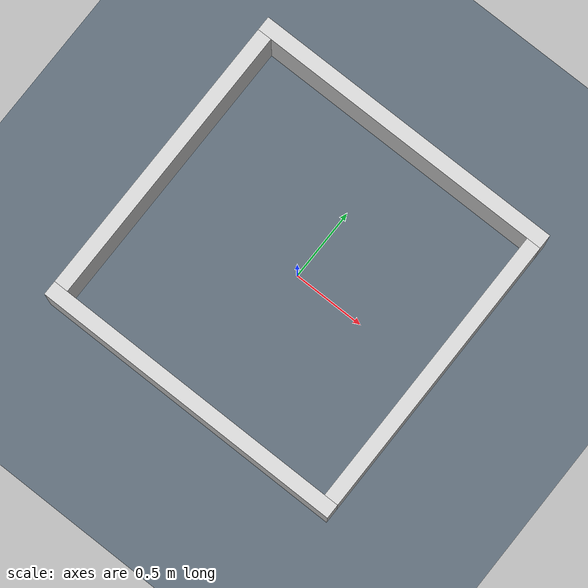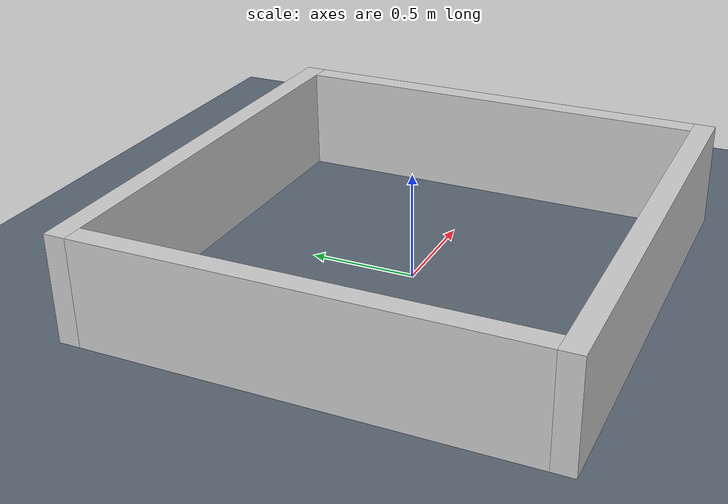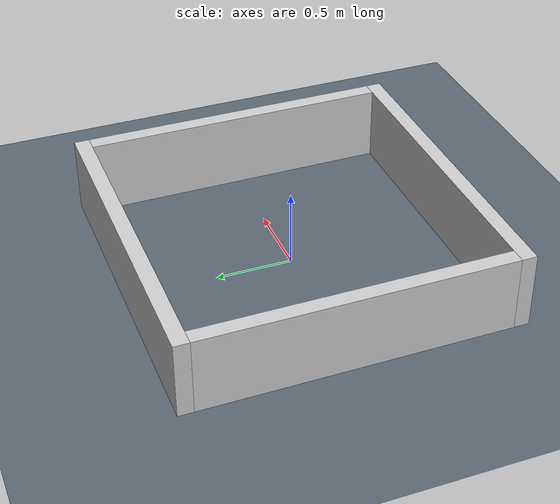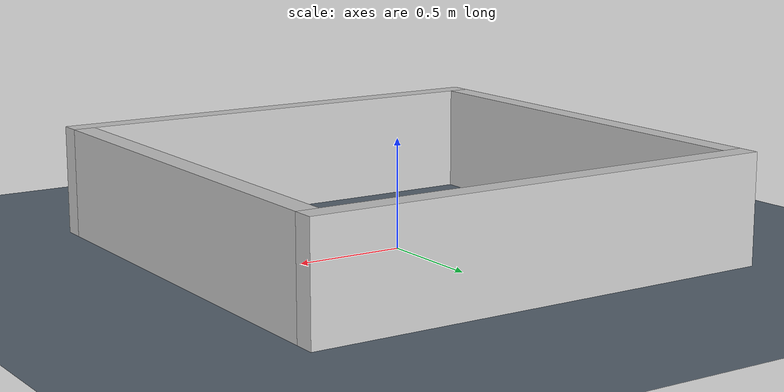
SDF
<?xml version="1.0"?>
<!-- Requested 2x2 m clear interior. Wall thickness 0.10 m; inner faces x/y = +/-1.0 m. -->
<sdf version="1.6"><world name="eng612_arena">
  <gravity>0 0 -9.81</gravity>
  <physics name="default_physics" type="ode"><max_step_size>0.001</max_step_size><real_time_update_rate>1000</real_time_update_rate></physics>
  <scene><ambient>0.5 0.5 0.5 1</ambient><background>0.8 0.85 0.9 1</background><shadows>false</shadows></scene>
  <light name="sun" type="directional"><pose>0 0 10 0 0 0</pose><diffuse>0.8 0.8 0.8 1</diffuse><specular>0.2 0.2 0.2 1</specular><direction>-0.5 0.1 -0.9</direction></light>
  <model name="ground"><static>true</static><link name="ground_link">
    <collision name="collision"><geometry><plane><normal>0 0 1</normal><size>20 20</size></plane></geometry></collision>
    <visual name="visual"><geometry><plane><normal>0 0 1</normal><size>20 20</size></plane></geometry>
      <material><ambient>0.35 0.4 0.45 1</ambient><diffuse>0.35 0.4 0.45 1</diffuse></material></visual>
  </link></model>
    <model name="south">
      <static>true</static><pose>0 -1.05 0.25 0 0 0</pose>
      <link name="wall"><collision name="collision"><geometry><box><size>2.2 0.1 0.5</size></box></geometry></collision>
        <visual name="visual"><geometry><box><size>2.2 0.1 0.5</size></box></geometry>
          <material><ambient>0.8 0.8 0.8 1</ambient><diffuse>0.8 0.8 0.8 1</diffuse></material></visual></link>
    </model>
    <model name="north">
      <static>true</static><pose>0 1.05 0.25 0 0 0</pose>
      <link name="wall"><collision name="collision"><geometry><box><size>2.2 0.1 0.5</size></box></geometry></collision>
        <visual name="visual"><geometry><box><size>2.2 0.1 0.5</size></box></geometry>
          <material><ambient>0.8 0.8 0.8 1</ambient><diffuse>0.8 0.8 0.8 1</diffuse></material></visual></link>
    </model>
    <model name="west">
      <static>true</static><pose>-1.05 0 0.25 0 0 0</pose>
      <link name="wall"><collision name="collision"><geometry><box><size>0.1 2.0 0.5</size></box></geometry></collision>
        <visual name="visual"><geometry><box><size>0.1 2.0 0.5</size></box></geometry>
          <material><ambient>0.8 0.8 0.8 1</ambient><diffuse>0.8 0.8 0.8 1</diffuse></material></visual></link>
    </model>
    <model name="east">
      <static>true</static><pose>1.05 0 0.25 0 0 0</pose>
      <link name="wall"><collision name="collision"><geometry><box><size>0.1 2.0 0.5</size></box></geometry></collision>
        <visual name="visual"><geometry><box><size>0.1 2.0 0.5</size></box></geometry>
          <material><ambient>0.8 0.8 0.8 1</ambient><diffuse>0.8 0.8 0.8 1</diffuse></material></visual></link>
    </model>
  <gui fullscreen="0"><camera name="view"><pose>3 -3 4.5 0 0.85 2.35</pose></camera></gui>
</world></sdf>
